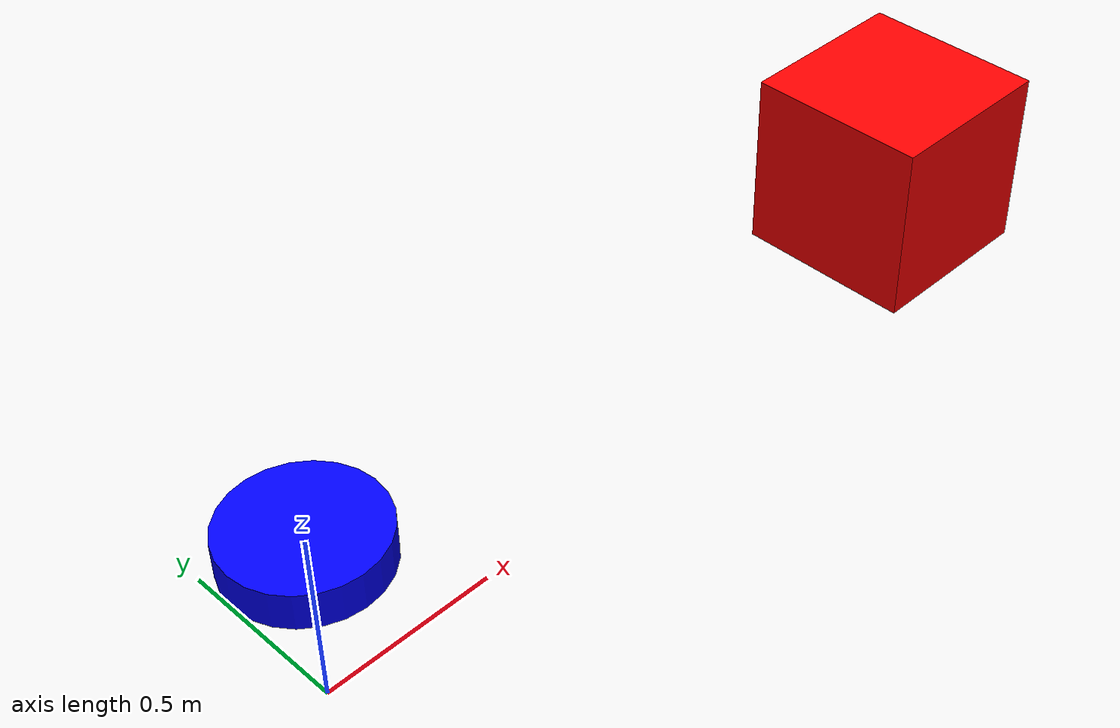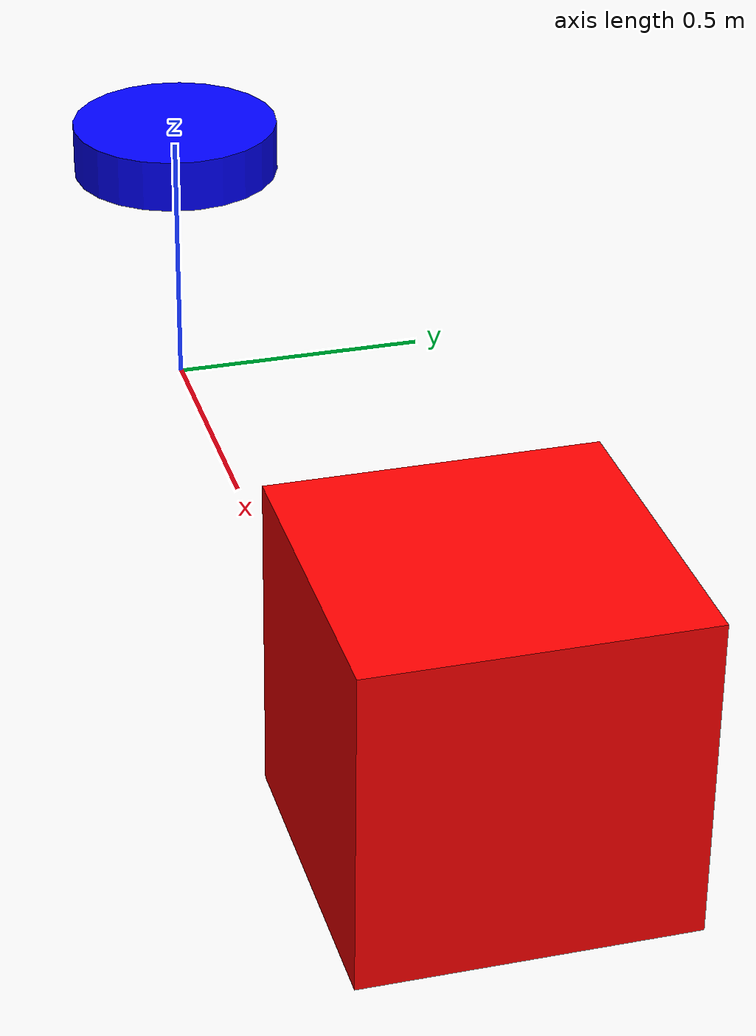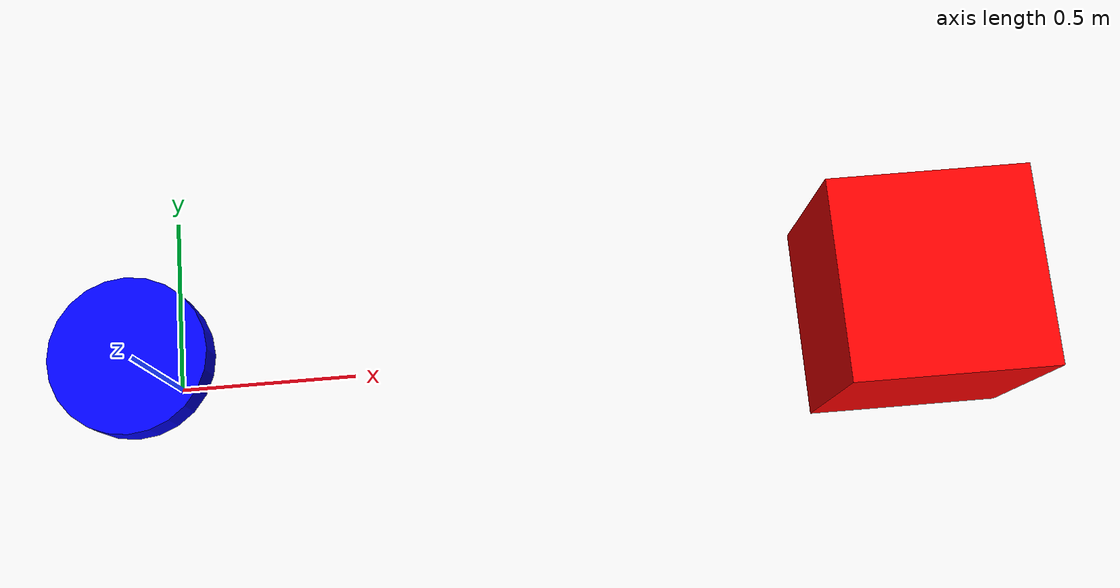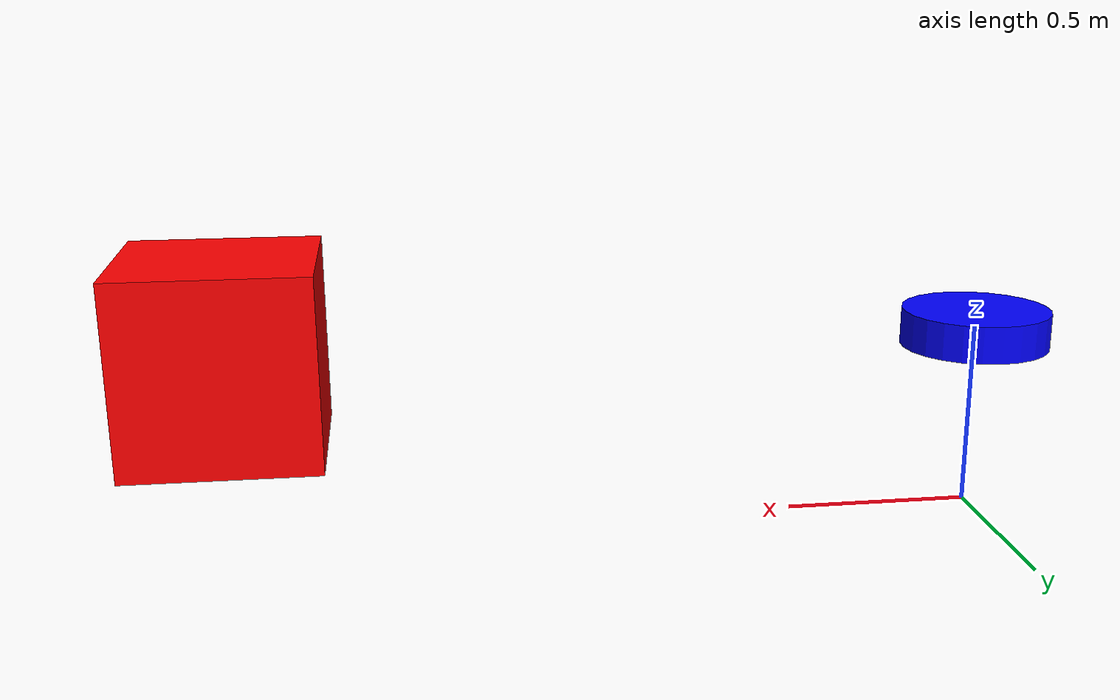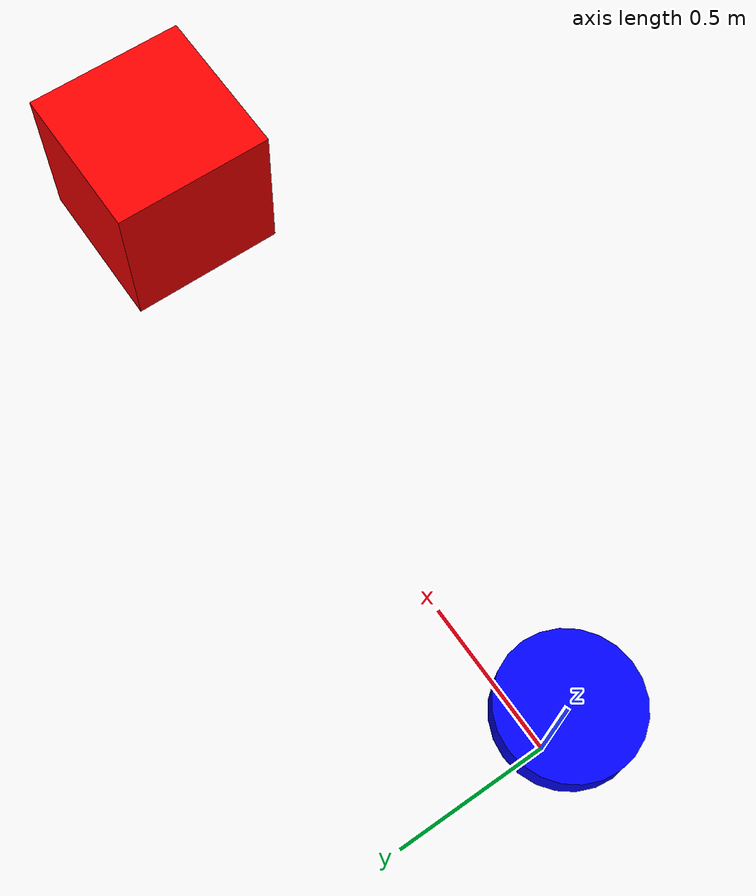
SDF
<sdf version="1.9">
  <world name="default">

    <!-- Drone représenté par un cylindre bleu -->
    <model name="drone">
      <pose>0 0 0.5 0 0 0</pose>
      <link name="link">
        <inertial>
          <mass>1.0</mass>
        </inertial>
        <collision name="collision">
          <geometry>
            <cylinder>
              <radius>0.2</radius>
              <length>0.1</length>
            </cylinder>
          </geometry>
        </collision>
        <visual name="visual">
          <geometry>
            <cylinder>
              <radius>0.2</radius>
              <length>0.1</length>
            </cylinder>
          </geometry>
          <material>
            <ambient>0 0 1 1</ambient>      <!-- bleu -->
            <diffuse>0 0 1 1</diffuse>
            <specular>0.1 0.1 0.1 1</specular>
            <emissive>0 0 0 1</emissive>
          </material>
        </visual>
      </link>
    </model>

    <!-- Cible représentée par un cube rouge -->
    <model name="target">
      <pose>2 0 0.5 0 0 0</pose>
      <link name="link">
        <inertial>
          <mass>1.0</mass>
        </inertial>
        <collision name="collision">
          <geometry>
            <box>
              <size>0.5 0.5 0.5</size>
            </box>
          </geometry>
        </collision>
        <visual name="visual">
          <geometry>
            <box>
              <size>0.5 0.5 0.5</size>
            </box>
          </geometry>
          <material>
            <ambient>1 0 0 1</ambient>      <!-- rouge -->
            <diffuse>1 0 0 1</diffuse>
            <specular>0.1 0.1 0.1 1</specular>
            <emissive>0 0 0 1</emissive>
          </material>
        </visual>
      </link>
    </model>

  </world>
</sdf>
